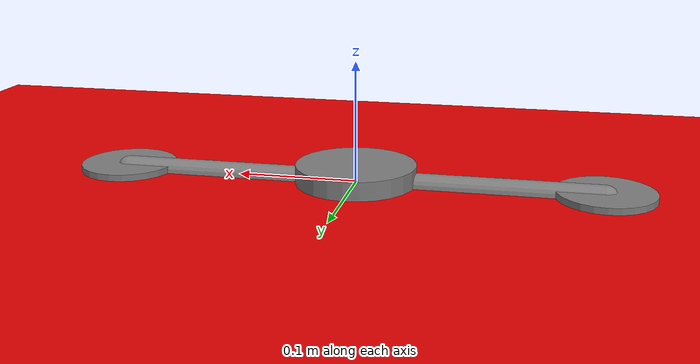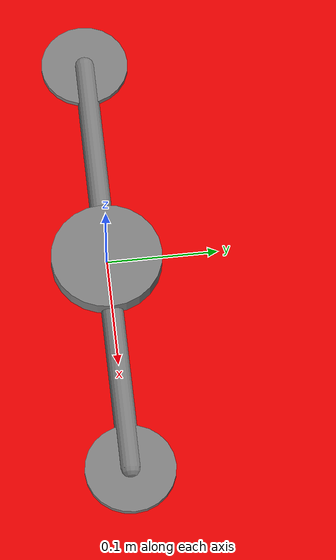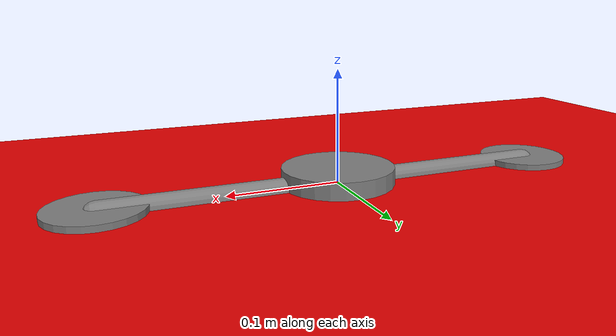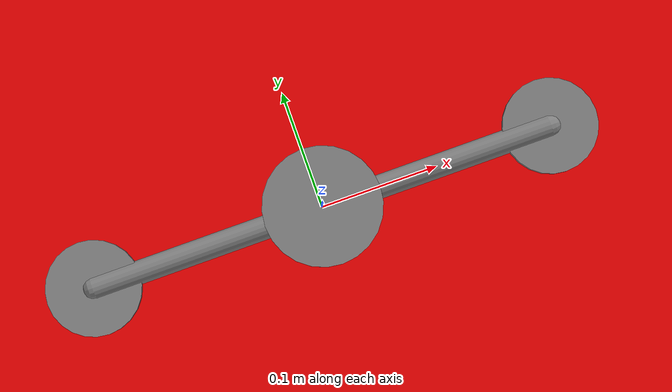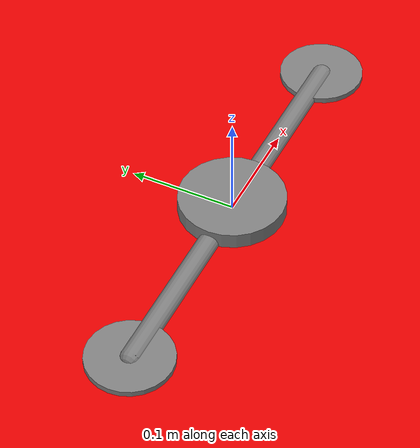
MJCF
<mujoco model="Quadcopter">
  <option timestep="0.002" integrator="RK4" gravity="0 0 -9.81">
    <flag sensornoise="disable" contact="enable" energy="enable"/>
  </option>

  <compiler angle="degree" coordinate="local" inertiafromgeom="true" />

  <worldbody>
  	<light diffuse=".5 .5 .5" pos="0 0 3" dir="0 0 -1"/>
		<geom type="plane" size="5 5 0.1" rgba=".9 0 0 1"/>
    <!--robot -->
    <body name="chassis" pos="0 0 0" euler="0 0 0">
		<geom mass="0.1" pos="0 0 0" size="0.05 0.015" type="cylinder" />
    <joint name="x" type="slide" pos ="0 0 0.0" axis="1 0 0" />
    <joint name="z" type="slide" pos ="0 0 0.0" axis="0 0 1" />
    <joint name="pin" type="hinge" pos ="0 0 0.0" axis="0 -1 0" />
    	<body name="rotor_arm0" pos="0.1 0. 0." quat="0.707 0. 0.707 0.">
      	<geom mass="0.05" size="0.01 0.1" type="capsule" />
      	<body name="rotor0" pos="0. 0. 0.1" quat="0.707 0 -0.707 0">
        	<geom mass="0.15" size="0.04 0.005" type="cylinder" />
      	</body>
    	</body>
      <body name="rotor_arm1" pos="-0.1 0 0" quat="0.707 0. 0.707 0">
        <geom mass="0.05" size="0.01 0.1" type="capsule" />
        <body name="rotor2" pos="0. 0 -0.1" quat="0.707 0. -0.707 0.">
          <geom mass="0.15" size="0.04 0.005" type="cylinder" />
        </body>
      </body>
    </body>
  </worldbody>
</mujoco>
